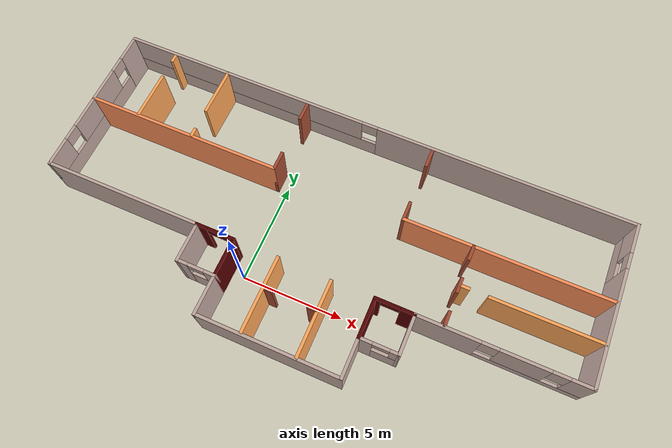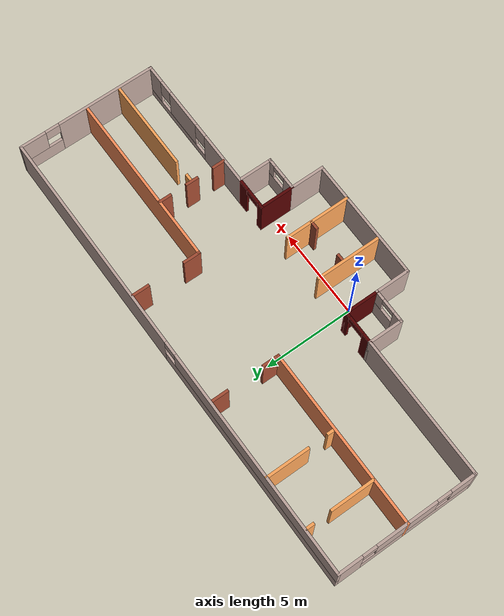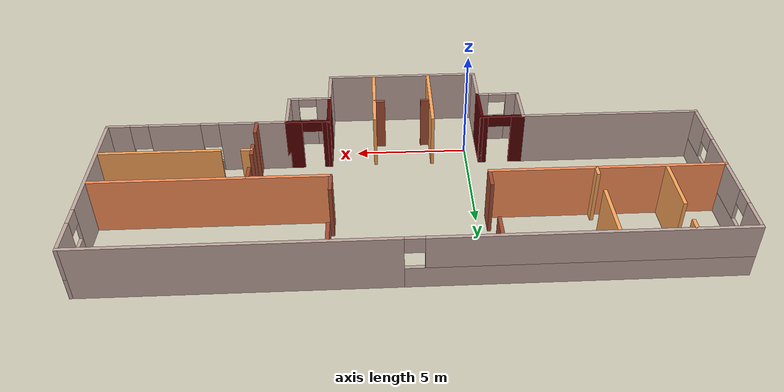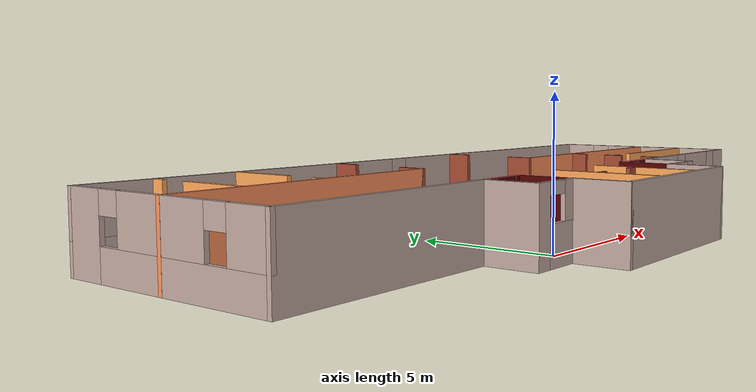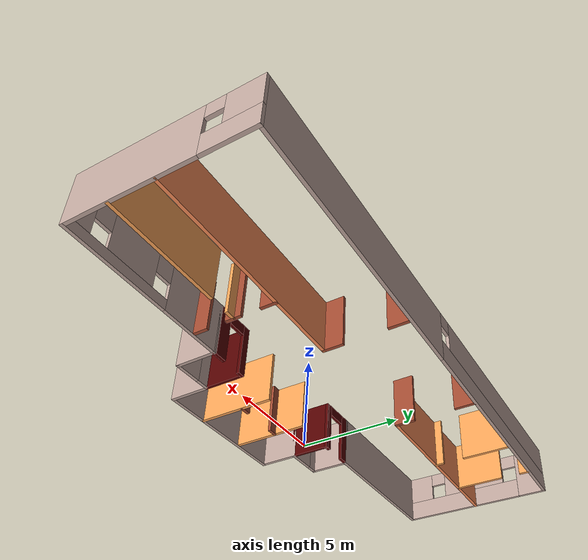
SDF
<?xml version='1.0'?>
<sdf version='1.6'>
  <model name='model'>
    <pose frame=''>2.79611 2.93325 0 0 -0 0</pose>
    <link name='Wall_10'>
      <pose frame=''>4.35076 -3.925 0 0 -0 0</pose>
      <visual name='Wall_10_Visual_0'>
        <pose frame=''>-0.647646 0 1.25 0 -0 0</pose>
        <geometry>
          <box>
            <size>0.704708 0.15 2.5</size>
          </box>
        </geometry>
        <material>
          <script>
            <uri>file://media/materials/scripts/gazebo.material</uri>
            <name>Gazebo/Grey</name>
          </script>
          <ambient>0.760784 0.662745 0.627451 1</ambient>
        </material>
        <meta>
          <layer>0</layer>
        </meta>
      </visual>
      <collision name='Wall_10_Collision_0'>
        <geometry>
          <box>
            <size>0.704708 0.15 2.5</size>
          </box>
        </geometry>
        <pose frame=''>-0.647646 0 1.25 0 -0 0</pose>
      </collision>
      <visual name='Wall_10_Visual_1'>
        <pose frame=''>0.352354 0 0.65 0 -0 0</pose>
        <geometry>
          <box>
            <size>1.29529 0.15 1.3</size>
          </box>
        </geometry>
        <material>
          <script>
            <uri>file://media/materials/scripts/gazebo.material</uri>
            <name>Gazebo/Grey</name>
          </script>
          <ambient>0.760784 0.662745 0.627451 1</ambient>
        </material>
        <meta>
          <layer>0</layer>
        </meta>
      </visual>
      <collision name='Wall_10_Collision_1'>
        <geometry>
          <box>
            <size>1.29529 0.15 1.3</size>
          </box>
        </geometry>
        <pose frame=''>0.352354 0 0.65 0 -0 0</pose>
      </collision>
      <visual name='Wall_10_Visual_2'>
        <pose frame=''>0.752354 0 1.9 0 -0 0</pose>
        <geometry>
          <box>
            <size>0.495292 0.15 1.2</size>
          </box>
        </geometry>
        <material>
          <script>
            <uri>file://media/materials/scripts/gazebo.material</uri>
            <name>Gazebo/Grey</name>
          </script>
          <ambient>0.760784 0.662745 0.627451 1</ambient>
        </material>
        <meta>
          <layer>0</layer>
        </meta>
      </visual>
      <collision name='Wall_10_Collision_2'>
        <geometry>
          <box>
            <size>0.495292 0.15 1.2</size>
          </box>
        </geometry>
        <pose frame=''>0.752354 0 1.9 0 -0 0</pose>
      </collision>
      <visual name='Wall_10_Visual_3'>
        <pose frame=''>0.104708 0 2.3 0 -0 0</pose>
        <geometry>
          <box>
            <size>0.8 0.15 0.4</size>
          </box>
        </geometry>
        <material>
          <script>
            <uri>file://media/materials/scripts/gazebo.material</uri>
            <name>Gazebo/Grey</name>
          </script>
          <ambient>0.760784 0.662745 0.627451 1</ambient>
        </material>
        <meta>
          <layer>0</layer>
        </meta>
      </visual>
      <collision name='Wall_10_Collision_3'>
        <geometry>
          <box>
            <size>0.8 0.15 0.4</size>
          </box>
        </geometry>
        <pose frame=''>0.104708 0 2.3 0 -0 0</pose>
      </collision>
    </link>
    <link name='Wall_11'>
      <collision name='Wall_11_Collision'>
        <geometry>
          <box>
            <size>2 0.15 2.5</size>
          </box>
        </geometry>
        <pose frame=''>0 0 1.25 0 -0 0</pose>
      </collision>
      <visual name='Wall_11_Visual'>
        <pose frame=''>0 0 1.25 0 -0 0</pose>
        <geometry>
          <box>
            <size>2 0.15 2.5</size>
          </box>
        </geometry>
        <material>
          <script>
            <uri>file://media/materials/scripts/gazebo.material</uri>
            <name>Gazebo/Grey</name>
          </script>
          <ambient>0.760784 0.662745 0.627451 1</ambient>
        </material>
        <meta>
          <layer>0</layer>
        </meta>
      </visual>
      <pose frame=''>5.27576 -3 0 0 -0 1.5708</pose>
    </link>
    <link name='Wall_12'>
      <pose frame=''>9.20076 -2.075 0 0 -0 0</pose>
      <visual name='Wall_12_Visual_0'>
        <pose frame=''>-2.47082 0 1.25 0 -0 0</pose>
        <geometry>
          <box>
            <size>3.05836 0.15 2.5</size>
          </box>
        </geometry>
        <material>
          <script>
            <uri>file://media/materials/scripts/gazebo.material</uri>
            <name>Gazebo/Grey</name>
          </script>
          <ambient>0.760784 0.662745 0.627451 1</ambient>
        </material>
        <meta>
          <layer>0</layer>
        </meta>
      </visual>
      <collision name='Wall_12_Collision_0'>
        <geometry>
          <box>
            <size>3.05836 0.15 2.5</size>
          </box>
        </geometry>
        <pose frame=''>-2.47082 0 1.25 0 -0 0</pose>
      </collision>
      <visual name='Wall_12_Visual_1'>
        <pose frame=''>1.52918 0 0.25 0 -0 0</pose>
        <geometry>
          <box>
            <size>4.94164 0.15 0.5</size>
          </box>
        </geometry>
        <material>
          <script>
            <uri>file://media/materials/scripts/gazebo.material</uri>
            <name>Gazebo/Grey</name>
          </script>
          <ambient>0.760784 0.662745 0.627451 1</ambient>
        </material>
        <meta>
          <layer>0</layer>
        </meta>
      </visual>
      <collision name='Wall_12_Collision_1'>
        <geometry>
          <box>
            <size>4.94164 0.15 0.5</size>
          </box>
        </geometry>
        <pose frame=''>1.52918 0 0.25 0 -0 0</pose>
      </collision>
      <visual name='Wall_12_Visual_2'>
        <pose frame=''>0.995093 0 1.5 0 -0 0</pose>
        <geometry>
          <box>
            <size>2.27347 0.15 2</size>
          </box>
        </geometry>
        <material>
          <script>
            <uri>file://media/materials/scripts/gazebo.material</uri>
            <name>Gazebo/Grey</name>
          </script>
          <ambient>0.760784 0.662745 0.627451 1</ambient>
        </material>
        <meta>
          <layer>0</layer>
        </meta>
      </visual>
      <collision name='Wall_12_Collision_2'>
        <geometry>
          <box>
            <size>2.27347 0.15 2</size>
          </box>
        </geometry>
        <pose frame=''>0.995093 0 1.5 0 -0 0</pose>
      </collision>
      <visual name='Wall_12_Visual_3'>
        <pose frame=''>3.46591 0 1.5 0 -0 0</pose>
        <geometry>
          <box>
            <size>1.06817 0.15 2</size>
          </box>
        </geometry>
        <material>
          <script>
            <uri>file://media/materials/scripts/gazebo.material</uri>
            <name>Gazebo/Grey</name>
          </script>
          <ambient>0.760784 0.662745 0.627451 1</ambient>
        </material>
        <meta>
          <layer>0</layer>
        </meta>
      </visual>
      <collision name='Wall_12_Collision_3'>
        <geometry>
          <box>
            <size>1.06817 0.15 2</size>
          </box>
        </geometry>
        <pose frame=''>3.46591 0 1.5 0 -0 0</pose>
      </collision>
      <visual name='Wall_12_Visual_4'>
        <pose frame=''>-0.54164 0 1.9 0 -0 0</pose>
        <geometry>
          <box>
            <size>0.8 0.15 1.2</size>
          </box>
        </geometry>
        <material>
          <script>
            <uri>file://media/materials/scripts/gazebo.material</uri>
            <name>Gazebo/Grey</name>
          </script>
          <ambient>0.760784 0.662745 0.627451 1</ambient>
        </material>
        <meta>
          <layer>0</layer>
        </meta>
      </visual>
      <collision name='Wall_12_Collision_4'>
        <geometry>
          <box>
            <size>0.8 0.15 1.2</size>
          </box>
        </geometry>
        <pose frame=''>-0.54164 0 1.9 0 -0 0</pose>
      </collision>
      <visual name='Wall_12_Visual_5'>
        <pose frame=''>2.53183 0 1.9 0 -0 0</pose>
        <geometry>
          <box>
            <size>0.8 0.15 1.2</size>
          </box>
        </geometry>
        <material>
          <script>
            <uri>file://media/materials/scripts/gazebo.material</uri>
            <name>Gazebo/Grey</name>
          </script>
          <ambient>0.760784 0.662745 0.627451 1</ambient>
        </material>
        <meta>
          <layer>0</layer>
        </meta>
      </visual>
      <collision name='Wall_12_Collision_5'>
        <geometry>
          <box>
            <size>0.8 0.15 1.2</size>
          </box>
        </geometry>
        <pose frame=''>2.53183 0 1.9 0 -0 0</pose>
      </collision>
    </link>
    <link name='Wall_13'>
      <pose frame=''>13.1258 1.85 0 0 -0 1.5708</pose>
      <visual name='Wall_13_Visual_0'>
        <pose frame=''>-1.15834 0 1.25 0 -0 0</pose>
        <geometry>
          <box>
            <size>5.68331 0.15 2.5</size>
          </box>
        </geometry>
        <material>
          <script>
            <uri>file://media/materials/scripts/gazebo.material</uri>
            <name>Gazebo/Grey</name>
          </script>
          <ambient>0.760784 0.662745 0.627451 1</ambient>
        </material>
        <meta>
          <layer>0</layer>
        </meta>
      </visual>
      <collision name='Wall_13_Collision_0'>
        <geometry>
          <box>
            <size>5.68331 0.15 2.5</size>
          </box>
        </geometry>
        <pose frame=''>-1.15834 0 1.25 0 -0 0</pose>
      </collision>
      <visual name='Wall_13_Visual_1'>
        <pose frame=''>2.84165 0 0.5 0 -0 0</pose>
        <geometry>
          <box>
            <size>2.31669 0.15 1</size>
          </box>
        </geometry>
        <material>
          <script>
            <uri>file://media/materials/scripts/gazebo.material</uri>
            <name>Gazebo/Grey</name>
          </script>
          <ambient>0.760784 0.662745 0.627451 1</ambient>
        </material>
        <meta>
          <layer>0</layer>
        </meta>
      </visual>
      <collision name='Wall_13_Collision_1'>
        <geometry>
          <box>
            <size>2.31669 0.15 1</size>
          </box>
        </geometry>
        <pose frame=''>2.84165 0 0.5 0 -0 0</pose>
      </collision>
      <visual name='Wall_13_Visual_2'>
        <pose frame=''>3.24166 0 1.75 0 -0 0</pose>
        <geometry>
          <box>
            <size>1.51669 0.15 1.5</size>
          </box>
        </geometry>
        <material>
          <script>
            <uri>file://media/materials/scripts/gazebo.material</uri>
            <name>Gazebo/Grey</name>
          </script>
          <ambient>0.760784 0.662745 0.627451 1</ambient>
        </material>
        <meta>
          <layer>0</layer>
        </meta>
      </visual>
      <collision name='Wall_13_Collision_2'>
        <geometry>
          <box>
            <size>1.51669 0.15 1.5</size>
          </box>
        </geometry>
        <pose frame=''>3.24166 0 1.75 0 -0 0</pose>
      </collision>
      <visual name='Wall_13_Visual_3'>
        <pose frame=''>2.08331 0 2.15 0 -0 0</pose>
        <geometry>
          <box>
            <size>0.8 0.15 0.7</size>
          </box>
        </geometry>
        <material>
          <script>
            <uri>file://media/materials/scripts/gazebo.material</uri>
            <name>Gazebo/Grey</name>
          </script>
          <ambient>0.760784 0.662745 0.627451 1</ambient>
        </material>
        <meta>
          <layer>0</layer>
        </meta>
      </visual>
      <collision name='Wall_13_Collision_3'>
        <geometry>
          <box>
            <size>0.8 0.15 0.7</size>
          </box>
        </geometry>
        <pose frame=''>2.08331 0 2.15 0 -0 0</pose>
      </collision>
    </link>
    <link name='Wall_14'>
      <pose frame=''>0.000761 5.775 0 0 -0 3.14159</pose>
      <visual name='Wall_14_Visual_0'>
        <pose frame=''>-6.79874 0 1.25 0 -0 0</pose>
        <geometry>
          <box>
            <size>12.8025 0.15 2.5</size>
          </box>
        </geometry>
        <material>
          <script>
            <uri>file://media/materials/scripts/gazebo.material</uri>
            <name>Gazebo/Grey</name>
          </script>
          <ambient>0.760784 0.662745 0.627451 1</ambient>
        </material>
        <meta>
          <layer>0</layer>
        </meta>
      </visual>
      <collision name='Wall_14_Collision_0'>
        <geometry>
          <box>
            <size>12.8025 0.15 2.5</size>
          </box>
        </geometry>
        <pose frame=''>-6.79874 0 1.25 0 -0 0</pose>
      </collision>
      <visual name='Wall_14_Visual_1'>
        <pose frame=''>6.40126 0 0.5 0 -0 0</pose>
        <geometry>
          <box>
            <size>13.5975 0.15 1</size>
          </box>
        </geometry>
        <material>
          <script>
            <uri>file://media/materials/scripts/gazebo.material</uri>
            <name>Gazebo/Grey</name>
          </script>
          <ambient>0.760784 0.662745 0.627451 1</ambient>
        </material>
        <meta>
          <layer>0</layer>
        </meta>
      </visual>
      <collision name='Wall_14_Collision_1'>
        <geometry>
          <box>
            <size>13.5975 0.15 1</size>
          </box>
        </geometry>
        <pose frame=''>6.40126 0 0.5 0 -0 0</pose>
      </collision>
      <visual name='Wall_14_Visual_2'>
        <pose frame=''>6.80126 0 1.75 0 -0 0</pose>
        <geometry>
          <box>
            <size>12.7975 0.15 1.5</size>
          </box>
        </geometry>
        <material>
          <script>
            <uri>file://media/materials/scripts/gazebo.material</uri>
            <name>Gazebo/Grey</name>
          </script>
          <ambient>0.760784 0.662745 0.627451 1</ambient>
        </material>
        <meta>
          <layer>0</layer>
        </meta>
      </visual>
      <collision name='Wall_14_Collision_2'>
        <geometry>
          <box>
            <size>12.7975 0.15 1.5</size>
          </box>
        </geometry>
        <pose frame=''>6.80126 0 1.75 0 -0 0</pose>
      </collision>
      <visual name='Wall_14_Visual_3'>
        <pose frame=''>0.002526 0 2.15 0 -0 0</pose>
        <geometry>
          <box>
            <size>0.8 0.15 0.7</size>
          </box>
        </geometry>
        <material>
          <script>
            <uri>file://media/materials/scripts/gazebo.material</uri>
            <name>Gazebo/Grey</name>
          </script>
          <ambient>0.760784 0.662745 0.627451 1</ambient>
        </material>
        <meta>
          <layer>0</layer>
        </meta>
      </visual>
      <collision name='Wall_14_Collision_3'>
        <geometry>
          <box>
            <size>0.8 0.15 0.7</size>
          </box>
        </geometry>
        <pose frame=''>0.002526 0 2.15 0 -0 0</pose>
      </collision>
    </link>
    <link name='Wall_17'>
      <collision name='Wall_17_Collision'>
        <geometry>
          <box>
            <size>2 0.15 2.5</size>
          </box>
        </geometry>
        <pose frame=''>0 0 1.25 0 -0 0</pose>
      </collision>
      <visual name='Wall_17_Visual'>
        <pose frame=''>0 0 1.25 0 -0 0</pose>
        <geometry>
          <box>
            <size>2 0.15 2.5</size>
          </box>
        </geometry>
        <material>
          <script>
            <uri>file://media/materials/scripts/gazebo.material</uri>
            <name>Gazebo/Grey</name>
          </script>
          <ambient>0.333333 0 0 1</ambient>
        </material>
        <meta>
          <layer>0</layer>
        </meta>
      </visual>
      <pose frame=''>-3.42424 -3 0 0 -0 1.5708</pose>
    </link>
    <link name='Wall_19'>
      <collision name='Wall_19_Collision'>
        <geometry>
          <box>
            <size>2 0.15 2.5</size>
          </box>
        </geometry>
        <pose frame=''>0 0 1.25 0 -0 0</pose>
      </collision>
      <visual name='Wall_19_Visual'>
        <pose frame=''>0 0 1.25 0 -0 0</pose>
        <geometry>
          <box>
            <size>2 0.15 2.5</size>
          </box>
        </geometry>
        <material>
          <script>
            <uri>file://media/materials/scripts/gazebo.material</uri>
            <name>Gazebo/Grey</name>
          </script>
          <ambient>0.333333 0 0 1</ambient>
        </material>
        <meta>
          <layer>0</layer>
        </meta>
      </visual>
      <pose frame=''>3.42576 -3 0 0 -0 1.5708</pose>
    </link>
    <link name='Wall_23'>
      <pose frame=''>-4.34924 -2.075 0 0 -0 0</pose>
      <visual name='Wall_23_Visual_0'>
        <pose frame=''>-0.695709 0 1.25 0 -0 0</pose>
        <geometry>
          <box>
            <size>0.608582 0.15 2.5</size>
          </box>
        </geometry>
        <material>
          <script>
            <uri>file://media/materials/scripts/gazebo.material</uri>
            <name>Gazebo/Grey</name>
          </script>
          <ambient>0.333333 0 0 1</ambient>
        </material>
        <meta>
          <layer>0</layer>
        </meta>
      </visual>
      <collision name='Wall_23_Collision_0'>
        <geometry>
          <box>
            <size>0.608582 0.15 2.5</size>
          </box>
        </geometry>
        <pose frame=''>-0.695709 0 1.25 0 -0 0</pose>
      </collision>
      <visual name='Wall_23_Visual_1'>
        <pose frame=''>0.821594 0 1.25 0 -0 0</pose>
        <geometry>
          <box>
            <size>0.356813 0.15 2.5</size>
          </box>
        </geometry>
        <material>
          <script>
            <uri>file://media/materials/scripts/gazebo.material</uri>
            <name>Gazebo/Grey</name>
          </script>
          <ambient>0.333333 0 0 1</ambient>
        </material>
        <meta>
          <layer>0</layer>
        </meta>
      </visual>
      <collision name='Wall_23_Collision_1'>
        <geometry>
          <box>
            <size>0.356813 0.15 2.5</size>
          </box>
        </geometry>
        <pose frame=''>0.821594 0 1.25 0 -0 0</pose>
      </collision>
      <visual name='Wall_23_Visual_2'>
        <pose frame=''>0.125884 0 2.25 0 -0 0</pose>
        <geometry>
          <box>
            <size>1.03461 0.15 0.5</size>
          </box>
        </geometry>
        <material>
          <script>
            <uri>file://media/materials/scripts/gazebo.material</uri>
            <name>Gazebo/Grey</name>
          </script>
          <ambient>0.333333 0 0 1</ambient>
        </material>
        <meta>
          <layer>0</layer>
        </meta>
      </visual>
      <collision name='Wall_23_Collision_2'>
        <geometry>
          <box>
            <size>1.03461 0.15 0.5</size>
          </box>
        </geometry>
        <pose frame=''>0.125884 0 2.25 0 -0 0</pose>
      </collision>
    </link>
    <link name='Wall_25'>
      <pose frame=''>4.35076 -2.075 0 0 -0 0</pose>
      <visual name='Wall_25_Visual_0'>
        <pose frame=''>-0.82203 0 1.25 0 -0 0</pose>
        <geometry>
          <box>
            <size>0.35594 0.15 2.5</size>
          </box>
        </geometry>
        <material>
          <script>
            <uri>file://media/materials/scripts/gazebo.material</uri>
            <name>Gazebo/Grey</name>
          </script>
          <ambient>0.337255 0 0 1</ambient>
        </material>
        <meta>
          <layer>0</layer>
        </meta>
      </visual>
      <collision name='Wall_25_Collision_0'>
        <geometry>
          <box>
            <size>0.35594 0.15 2.5</size>
          </box>
        </geometry>
        <pose frame=''>-0.82203 0 1.25 0 -0 0</pose>
      </collision>
      <visual name='Wall_25_Visual_1'>
        <pose frame=''>0.62797 0 1.25 0 -0 0</pose>
        <geometry>
          <box>
            <size>0.74406 0.15 2.5</size>
          </box>
        </geometry>
        <material>
          <script>
            <uri>file://media/materials/scripts/gazebo.material</uri>
            <name>Gazebo/Grey</name>
          </script>
          <ambient>0.337255 0 0 1</ambient>
        </material>
        <meta>
          <layer>0</layer>
        </meta>
      </visual>
      <collision name='Wall_25_Collision_1'>
        <geometry>
          <box>
            <size>0.74406 0.15 2.5</size>
          </box>
        </geometry>
        <pose frame=''>0.62797 0 1.25 0 -0 0</pose>
      </collision>
      <visual name='Wall_25_Visual_2'>
        <pose frame=''>-0.19406 0 2.25 0 -0 0</pose>
        <geometry>
          <box>
            <size>0.9 0.15 0.5</size>
          </box>
        </geometry>
        <material>
          <script>
            <uri>file://media/materials/scripts/gazebo.material</uri>
            <name>Gazebo/Grey</name>
          </script>
          <ambient>0.337255 0 0 1</ambient>
        </material>
        <meta>
          <layer>0</layer>
        </meta>
      </visual>
      <collision name='Wall_25_Collision_2'>
        <geometry>
          <box>
            <size>0.9 0.15 0.5</size>
          </box>
        </geometry>
        <pose frame=''>-0.19406 0 2.25 0 -0 0</pose>
      </collision>
    </link>
    <link name='Wall_27'>
      <collision name='Wall_27_Collision'>
        <geometry>
          <box>
            <size>10 0.15 2.5</size>
          </box>
        </geometry>
        <pose frame=''>0 0 1.25 0 -0 0</pose>
      </collision>
      <visual name='Wall_27_Visual'>
        <pose frame=''>0 0 1.25 0 -0 0</pose>
        <geometry>
          <box>
            <size>10 0.15 2.5</size>
          </box>
        </geometry>
        <material>
          <script>
            <uri>file://media/materials/scripts/gazebo.material</uri>
            <name>Gazebo/Grey</name>
          </script>
          <ambient>1 0.568627 0.352941 1</ambient>
        </material>
        <meta>
          <layer>0</layer>
        </meta>
      </visual>
      <pose frame=''>-8.20076 1.8559 0 0 -0 0</pose>
    </link>
    <link name='Wall_29'>
      <collision name='Wall_29_Collision'>
        <geometry>
          <box>
            <size>1 0.15 2.5</size>
          </box>
        </geometry>
        <pose frame=''>0 0 1.25 0 -0 0</pose>
      </collision>
      <visual name='Wall_29_Visual'>
        <pose frame=''>0 0 1.25 0 -0 0</pose>
        <geometry>
          <box>
            <size>1 0.15 2.5</size>
          </box>
        </geometry>
        <material>
          <script>
            <uri>file://media/materials/scripts/gazebo.material</uri>
            <name>Gazebo/Bricks</name>
          </script>
          <ambient>1 1 1 1</ambient>
        </material>
        <meta>
          <layer>0</layer>
        </meta>
      </visual>
      <pose frame=''>-3.27576 2.2809 0 0 -0 1.5708</pose>
    </link>
    <link name='Wall_3'>
      <pose frame=''>-13.1242 1.85 0 0 0 -1.5708</pose>
      <visual name='Wall_3_Visual_0'>
        <pose frame=''>-3.27577 0 1.25 0 -0 0</pose>
        <geometry>
          <box>
            <size>1.44847 0.15 2.5</size>
          </box>
        </geometry>
        <material>
          <script>
            <uri>file://media/materials/scripts/gazebo.material</uri>
            <name>Gazebo/Grey</name>
          </script>
          <ambient>0.760784 0.662745 0.627451 1</ambient>
        </material>
        <meta>
          <layer>0</layer>
        </meta>
      </visual>
      <collision name='Wall_3_Collision_0'>
        <geometry>
          <box>
            <size>1.44847 0.15 2.5</size>
          </box>
        </geometry>
        <pose frame=''>-3.27577 0 1.25 0 -0 0</pose>
      </collision>
      <visual name='Wall_3_Visual_1'>
        <pose frame=''>0.724233 0 0.5 0 -0 0</pose>
        <geometry>
          <box>
            <size>6.55153 0.15 1</size>
          </box>
        </geometry>
        <material>
          <script>
            <uri>file://media/materials/scripts/gazebo.material</uri>
            <name>Gazebo/Grey</name>
          </script>
          <ambient>0.760784 0.662745 0.627451 1</ambient>
        </material>
        <meta>
          <layer>0</layer>
        </meta>
      </visual>
      <collision name='Wall_3_Collision_1'>
        <geometry>
          <box>
            <size>6.55153 0.15 1</size>
          </box>
        </geometry>
        <pose frame=''>0.724233 0 0.5 0 -0 0</pose>
      </collision>
      <visual name='Wall_3_Visual_2'>
        <pose frame=''>-0.01388 0 1.75 0 -0 0</pose>
        <geometry>
          <box>
            <size>3.47531 0.15 1.5</size>
          </box>
        </geometry>
        <material>
          <script>
            <uri>file://media/materials/scripts/gazebo.material</uri>
            <name>Gazebo/Grey</name>
          </script>
          <ambient>0.760784 0.662745 0.627451 1</ambient>
        </material>
        <meta>
          <layer>0</layer>
        </meta>
      </visual>
      <collision name='Wall_3_Collision_2'>
        <geometry>
          <box>
            <size>3.47531 0.15 1.5</size>
          </box>
        </geometry>
        <pose frame=''>-0.01388 0 1.75 0 -0 0</pose>
      </collision>
      <visual name='Wall_3_Visual_3'>
        <pose frame=''>3.26189 0 1.75 0 -0 0</pose>
        <geometry>
          <box>
            <size>1.47623 0.15 1.5</size>
          </box>
        </geometry>
        <material>
          <script>
            <uri>file://media/materials/scripts/gazebo.material</uri>
            <name>Gazebo/Grey</name>
          </script>
          <ambient>0.760784 0.662745 0.627451 1</ambient>
        </material>
        <meta>
          <layer>0</layer>
        </meta>
      </visual>
      <collision name='Wall_3_Collision_3'>
        <geometry>
          <box>
            <size>1.47623 0.15 1.5</size>
          </box>
        </geometry>
        <pose frame=''>3.26189 0 1.75 0 -0 0</pose>
      </collision>
      <visual name='Wall_3_Visual_4'>
        <pose frame=''>-2.15153 0 2.15 0 -0 0</pose>
        <geometry>
          <box>
            <size>0.8 0.15 0.7</size>
          </box>
        </geometry>
        <material>
          <script>
            <uri>file://media/materials/scripts/gazebo.material</uri>
            <name>Gazebo/Grey</name>
          </script>
          <ambient>0.760784 0.662745 0.627451 1</ambient>
        </material>
        <meta>
          <layer>0</layer>
        </meta>
      </visual>
      <collision name='Wall_3_Collision_4'>
        <geometry>
          <box>
            <size>0.8 0.15 0.7</size>
          </box>
        </geometry>
        <pose frame=''>-2.15153 0 2.15 0 -0 0</pose>
      </collision>
      <visual name='Wall_3_Visual_5'>
        <pose frame=''>2.12377 0 2.15 0 -0 0</pose>
        <geometry>
          <box>
            <size>0.8 0.15 0.7</size>
          </box>
        </geometry>
        <material>
          <script>
            <uri>file://media/materials/scripts/gazebo.material</uri>
            <name>Gazebo/Grey</name>
          </script>
          <ambient>0.760784 0.662745 0.627451 1</ambient>
        </material>
        <meta>
          <layer>0</layer>
        </meta>
      </visual>
      <collision name='Wall_3_Collision_5'>
        <geometry>
          <box>
            <size>0.8 0.15 0.7</size>
          </box>
        </geometry>
        <pose frame=''>2.12377 0 2.15 0 -0 0</pose>
      </collision>
    </link>
    <link name='Wall_31'>
      <collision name='Wall_31_Collision'>
        <geometry>
          <box>
            <size>1 0.15 2.5</size>
          </box>
        </geometry>
        <pose frame=''>0 0 1.25 0 -0 0</pose>
      </collision>
      <visual name='Wall_31_Visual'>
        <pose frame=''>0 0 1.25 0 -0 0</pose>
        <geometry>
          <box>
            <size>1 0.15 2.5</size>
          </box>
        </geometry>
        <material>
          <script>
            <uri>file://media/materials/scripts/gazebo.material</uri>
            <name>Gazebo/Bricks</name>
          </script>
          <ambient>1 1 1 1</ambient>
        </material>
        <meta>
          <layer>0</layer>
        </meta>
      </visual>
      <pose frame=''>-3.28723 5.2599 0 0 0 -1.5708</pose>
    </link>
    <link name='Wall_33'>
      <collision name='Wall_33_Collision'>
        <geometry>
          <box>
            <size>10 0.15 2.5</size>
          </box>
        </geometry>
        <pose frame=''>0 0 1.25 0 -0 0</pose>
      </collision>
      <visual name='Wall_33_Visual'>
        <pose frame=''>0 0 1.25 0 -0 0</pose>
        <geometry>
          <box>
            <size>10 0.15 2.5</size>
          </box>
        </geometry>
        <material>
          <script>
            <uri>file://media/materials/scripts/gazebo.material</uri>
            <name>Gazebo/Grey</name>
          </script>
          <ambient>1 0.568627 0.352941 1</ambient>
        </material>
        <meta>
          <layer>0</layer>
        </meta>
      </visual>
      <pose frame=''>8.16802 1.85434 0 0 -0 3.14159</pose>
    </link>
    <link name='Wall_34'>
      <collision name='Wall_34_Collision'>
        <geometry>
          <box>
            <size>1 0.15 2.5</size>
          </box>
        </geometry>
        <pose frame=''>0 0 1.25 0 -0 0</pose>
      </collision>
      <visual name='Wall_34_Visual'>
        <pose frame=''>0 0 1.25 0 -0 0</pose>
        <geometry>
          <box>
            <size>1 0.15 2.5</size>
          </box>
        </geometry>
        <material>
          <script>
            <uri>file://media/materials/scripts/gazebo.material</uri>
            <name>Gazebo/Bricks</name>
          </script>
          <ambient>1 1 1 1</ambient>
        </material>
        <meta>
          <layer>0</layer>
        </meta>
      </visual>
      <pose frame=''>3.23171 2.27934 0 0 -0 1.5708</pose>
    </link>
    <link name='Wall_36'>
      <collision name='Wall_36_Collision'>
        <geometry>
          <box>
            <size>1 0.15 2.5</size>
          </box>
        </geometry>
        <pose frame=''>0 0 1.25 0 -0 0</pose>
      </collision>
      <visual name='Wall_36_Visual'>
        <pose frame=''>0 0 1.25 0 -0 0</pose>
        <geometry>
          <box>
            <size>1 0.15 2.5</size>
          </box>
        </geometry>
        <material>
          <script>
            <uri>file://media/materials/scripts/gazebo.material</uri>
            <name>Gazebo/Bricks</name>
          </script>
          <ambient>1 1 1 1</ambient>
        </material>
        <meta>
          <layer>0</layer>
        </meta>
      </visual>
      <pose frame=''>3.24957 5.26265 0 0 0 -1.5708</pose>
    </link>
    <link name='Wall_4'>
      <collision name='Wall_4_Collision'>
        <geometry>
          <box>
            <size>8 0.15 2.5</size>
          </box>
        </geometry>
        <pose frame=''>0 0 1.25 0 -0 0</pose>
      </collision>
      <visual name='Wall_4_Visual'>
        <pose frame=''>0 0 1.25 0 -0 0</pose>
        <geometry>
          <box>
            <size>8 0.15 2.5</size>
          </box>
        </geometry>
        <material>
          <script>
            <uri>file://media/materials/scripts/gazebo.material</uri>
            <name>Gazebo/Grey</name>
          </script>
          <ambient>0.760784 0.662745 0.627451 1</ambient>
        </material>
        <meta>
          <layer>0</layer>
        </meta>
      </visual>
      <pose frame=''>-9.19924 -2.075 0 0 -0 0</pose>
    </link>
    <link name='Wall_40'>
      <collision name='Wall_40_Collision'>
        <geometry>
          <box>
            <size>3.75 0.15 2.5</size>
          </box>
        </geometry>
        <pose frame=''>0 0 1.25 0 -0 0</pose>
      </collision>
      <visual name='Wall_40_Visual'>
        <pose frame=''>0 0 1.25 0 -0 0</pose>
        <geometry>
          <box>
            <size>3.75 0.15 2.5</size>
          </box>
        </geometry>
        <material>
          <script>
            <uri>file://media/materials/scripts/gazebo.material</uri>
            <name>Gazebo/Grey</name>
          </script>
          <ambient>1 0.654902 0.352941 1</ambient>
        </material>
        <meta>
          <layer>0</layer>
        </meta>
      </visual>
      <pose frame=''>-1.2227 -3.87802 0 0 -0 1.5708</pose>
    </link>
    <link name='Wall_42'>
      <collision name='Wall_42_Collision'>
        <geometry>
          <box>
            <size>3.75 0.15 2.5</size>
          </box>
        </geometry>
        <pose frame=''>0 0 1.25 0 -0 0</pose>
      </collision>
      <visual name='Wall_42_Visual'>
        <pose frame=''>0 0 1.25 0 -0 0</pose>
        <geometry>
          <box>
            <size>3.75 0.15 2.5</size>
          </box>
        </geometry>
        <material>
          <script>
            <uri>file://media/materials/scripts/gazebo.material</uri>
            <name>Gazebo/Grey</name>
          </script>
          <ambient>1 0.654902 0.352941 1</ambient>
        </material>
        <meta>
          <layer>0</layer>
        </meta>
      </visual>
      <pose frame=''>1.36977 -3.93472 0 0 -0 1.5708</pose>
    </link>
    <link name='Wall_44'>
      <collision name='Wall_44_Collision'>
        <geometry>
          <box>
            <size>0.5 0.15 2.5</size>
          </box>
        </geometry>
        <pose frame=''>0 0 1.25 0 -0 0</pose>
      </collision>
      <visual name='Wall_44_Visual'>
        <pose frame=''>0 0 1.25 0 -0 0</pose>
        <geometry>
          <box>
            <size>0.5 0.15 2.5</size>
          </box>
        </geometry>
        <material>
          <script>
            <uri>file://media/materials/scripts/gazebo.material</uri>
            <name>Gazebo/Bricks</name>
          </script>
          <ambient>1 1 1 1</ambient>
        </material>
        <meta>
          <layer>0</layer>
        </meta>
      </visual>
      <pose frame=''>-1.00222 -3.57433 0 0 -0 0</pose>
    </link>
    <link name='Wall_46'>
      <collision name='Wall_46_Collision'>
        <geometry>
          <box>
            <size>0.5 0.15 2.5</size>
          </box>
        </geometry>
        <pose frame=''>0 0 1.25 0 -0 0</pose>
      </collision>
      <visual name='Wall_46_Visual'>
        <pose frame=''>0 0 1.25 0 -0 0</pose>
        <geometry>
          <box>
            <size>0.5 0.15 2.5</size>
          </box>
        </geometry>
        <material>
          <script>
            <uri>file://media/materials/scripts/gazebo.material</uri>
            <name>Gazebo/Bricks</name>
          </script>
          <ambient>1 1 1 1</ambient>
        </material>
        <meta>
          <layer>0</layer>
        </meta>
      </visual>
      <pose frame=''>1.13792 -3.57433 0 0 -0 3.14159</pose>
    </link>
    <link name='Wall_48'>
      <collision name='Wall_48_Collision'>
        <geometry>
          <box>
            <size>0.5 0.15 2.5</size>
          </box>
        </geometry>
        <pose frame=''>0 0 1.25 0 -0 0</pose>
      </collision>
      <visual name='Wall_48_Visual'>
        <pose frame=''>0 0 1.25 0 -0 0</pose>
        <geometry>
          <box>
            <size>0.5 0.15 2.5</size>
          </box>
        </geometry>
        <material>
          <script>
            <uri>file://media/materials/scripts/gazebo.material</uri>
            <name>Gazebo/Grey</name>
          </script>
          <ambient>1 0.654902 0.352941 1</ambient>
        </material>
        <meta>
          <layer>0</layer>
        </meta>
      </visual>
      <pose frame=''>-10.6509 5.51316 0 0 0 -1.5708</pose>
    </link>
    <link name='Wall_5'>
      <collision name='Wall_5_Collision'>
        <geometry>
          <box>
            <size>2 0.15 2.5</size>
          </box>
        </geometry>
        <pose frame=''>0 0 1.25 0 -0 0</pose>
      </collision>
      <visual name='Wall_5_Visual'>
        <pose frame=''>0 0 1.25 0 -0 0</pose>
        <geometry>
          <box>
            <size>2 0.15 2.5</size>
          </box>
        </geometry>
        <material>
          <script>
            <uri>file://media/materials/scripts/gazebo.material</uri>
            <name>Gazebo/Grey</name>
          </script>
          <ambient>0.760784 0.662745 0.627451 1</ambient>
        </material>
        <meta>
          <layer>0</layer>
        </meta>
      </visual>
      <pose frame=''>-5.27424 -3 0 0 0 -1.5708</pose>
    </link>
    <link name='Wall_50'>
      <collision name='Wall_50_Collision'>
        <geometry>
          <box>
            <size>2.5 0.15 2.5</size>
          </box>
        </geometry>
        <pose frame=''>0 0 1.25 0 -0 0</pose>
      </collision>
      <visual name='Wall_50_Visual'>
        <pose frame=''>0 0 1.25 0 -0 0</pose>
        <geometry>
          <box>
            <size>2.5 0.15 2.5</size>
          </box>
        </geometry>
        <material>
          <script>
            <uri>file://media/materials/scripts/gazebo.material</uri>
            <name>Gazebo/Grey</name>
          </script>
          <ambient>1 0.654902 0.352941 1</ambient>
        </material>
        <meta>
          <layer>0</layer>
        </meta>
      </visual>
      <pose frame=''>-10.6378 3.0748 0 0 0 -1.5708</pose>
    </link>
    <link name='Wall_52'>
      <collision name='Wall_52_Collision'>
        <geometry>
          <box>
            <size>0.5 0.15 2.5</size>
          </box>
        </geometry>
        <pose frame=''>0 0 1.25 0 -0 0</pose>
      </collision>
      <visual name='Wall_52_Visual'>
        <pose frame=''>0 0 1.25 0 -0 0</pose>
        <geometry>
          <box>
            <size>0.5 0.15 2.5</size>
          </box>
        </geometry>
        <material>
          <script>
            <uri>file://media/materials/scripts/gazebo.material</uri>
            <name>Gazebo/Grey</name>
          </script>
          <ambient>1 0.654902 0.352941 1</ambient>
        </material>
        <meta>
          <layer>0</layer>
        </meta>
      </visual>
      <pose frame=''>-7.69566 2.05803 0 0 -0 1.5708</pose>
    </link>
    <link name='Wall_54'>
      <collision name='Wall_54_Collision'>
        <geometry>
          <box>
            <size>2.5 0.15 2.5</size>
          </box>
        </geometry>
        <pose frame=''>0 0 1.25 0 -0 0</pose>
      </collision>
      <visual name='Wall_54_Visual'>
        <pose frame=''>0 0 1.25 0 -0 0</pose>
        <geometry>
          <box>
            <size>2.5 0.15 2.5</size>
          </box>
        </geometry>
        <material>
          <script>
            <uri>file://media/materials/scripts/gazebo.material</uri>
            <name>Gazebo/Grey</name>
          </script>
          <ambient>1 0.654902 0.352941 1</ambient>
        </material>
        <meta>
          <layer>0</layer>
        </meta>
      </visual>
      <pose frame=''>-7.70873 4.58793 0 0 -0 1.5708</pose>
    </link>
    <link name='Wall_56'>
      <collision name='Wall_56_Collision'>
        <geometry>
          <box>
            <size>0.75 0.15 2.5</size>
          </box>
        </geometry>
        <pose frame=''>0 0 1.25 0 -0 0</pose>
      </collision>
      <visual name='Wall_56_Visual'>
        <pose frame=''>0 0 1.25 0 -0 0</pose>
        <geometry>
          <box>
            <size>0.75 0.15 2.5</size>
          </box>
        </geometry>
        <material>
          <script>
            <uri>file://media/materials/scripts/gazebo.material</uri>
            <name>Gazebo/Bricks</name>
          </script>
          <ambient>1 1 1 1</ambient>
        </material>
        <meta>
          <layer>0</layer>
        </meta>
      </visual>
      <pose frame=''>6.59323 1.52679 0 0 0 -1.5708</pose>
    </link>
    <link name='Wall_58'>
      <collision name='Wall_58_Collision'>
        <geometry>
          <box>
            <size>0.75 0.15 2.5</size>
          </box>
        </geometry>
        <pose frame=''>0 0 1.25 0 -0 0</pose>
      </collision>
      <visual name='Wall_58_Visual'>
        <pose frame=''>0 0 1.25 0 -0 0</pose>
        <geometry>
          <box>
            <size>0.75 0.15 2.5</size>
          </box>
        </geometry>
        <material>
          <script>
            <uri>file://media/materials/scripts/gazebo.material</uri>
            <name>Gazebo/Bricks</name>
          </script>
          <ambient>1 1 1 1</ambient>
        </material>
        <meta>
          <layer>0</layer>
        </meta>
      </visual>
      <pose frame=''>6.59695 -1.70286 0 0 -0 1.5708</pose>
    </link>
    <link name='Wall_6'>
      <pose frame=''>-4.34924 -3.925 0 0 -0 0</pose>
      <visual name='Wall_6_Visual_0'>
        <pose frame=''>-0.698028 0 1.25 0 -0 0</pose>
        <geometry>
          <box>
            <size>0.603944 0.15 2.5</size>
          </box>
        </geometry>
        <material>
          <script>
            <uri>file://media/materials/scripts/gazebo.material</uri>
            <name>Gazebo/Grey</name>
          </script>
          <ambient>0.760784 0.662745 0.627451 1</ambient>
        </material>
        <meta>
          <layer>0</layer>
        </meta>
      </visual>
      <collision name='Wall_6_Collision_0'>
        <geometry>
          <box>
            <size>0.603944 0.15 2.5</size>
          </box>
        </geometry>
        <pose frame=''>-0.698028 0 1.25 0 -0 0</pose>
      </collision>
      <visual name='Wall_6_Visual_1'>
        <pose frame=''>0.301972 0 0.65 0 -0 0</pose>
        <geometry>
          <box>
            <size>1.39606 0.15 1.3</size>
          </box>
        </geometry>
        <material>
          <script>
            <uri>file://media/materials/scripts/gazebo.material</uri>
            <name>Gazebo/Grey</name>
          </script>
          <ambient>0.760784 0.662745 0.627451 1</ambient>
        </material>
        <meta>
          <layer>0</layer>
        </meta>
      </visual>
      <collision name='Wall_6_Collision_1'>
        <geometry>
          <box>
            <size>1.39606 0.15 1.3</size>
          </box>
        </geometry>
        <pose frame=''>0.301972 0 0.65 0 -0 0</pose>
      </collision>
      <visual name='Wall_6_Visual_2'>
        <pose frame=''>0.701972 0 1.9 0 -0 0</pose>
        <geometry>
          <box>
            <size>0.596056 0.15 1.2</size>
          </box>
        </geometry>
        <material>
          <script>
            <uri>file://media/materials/scripts/gazebo.material</uri>
            <name>Gazebo/Grey</name>
          </script>
          <ambient>0.760784 0.662745 0.627451 1</ambient>
        </material>
        <meta>
          <layer>0</layer>
        </meta>
      </visual>
      <collision name='Wall_6_Collision_2'>
        <geometry>
          <box>
            <size>0.596056 0.15 1.2</size>
          </box>
        </geometry>
        <pose frame=''>0.701972 0 1.9 0 -0 0</pose>
      </collision>
      <visual name='Wall_6_Visual_3'>
        <pose frame=''>0.003944 0 2.3 0 -0 0</pose>
        <geometry>
          <box>
            <size>0.8 0.15 0.4</size>
          </box>
        </geometry>
        <material>
          <script>
            <uri>file://media/materials/scripts/gazebo.material</uri>
            <name>Gazebo/Grey</name>
          </script>
          <ambient>0.760784 0.662745 0.627451 1</ambient>
        </material>
        <meta>
          <layer>0</layer>
        </meta>
      </visual>
      <collision name='Wall_6_Collision_3'>
        <geometry>
          <box>
            <size>0.8 0.15 0.4</size>
          </box>
        </geometry>
        <pose frame=''>0.003944 0 2.3 0 -0 0</pose>
      </collision>
    </link>
    <link name='Wall_60'>
      <collision name='Wall_60_Collision'>
        <geometry>
          <box>
            <size>0.75 0.15 2.5</size>
          </box>
        </geometry>
        <pose frame=''>0 0 1.25 0 -0 0</pose>
      </collision>
      <visual name='Wall_60_Visual'>
        <pose frame=''>0 0 1.25 0 -0 0</pose>
        <geometry>
          <box>
            <size>0.75 0.15 2.5</size>
          </box>
        </geometry>
        <material>
          <script>
            <uri>file://media/materials/scripts/gazebo.material</uri>
            <name>Gazebo/Bricks</name>
          </script>
          <ambient>1 1 1 1</ambient>
        </material>
        <meta>
          <layer>0</layer>
        </meta>
      </visual>
      <pose frame=''>6.59837 -0.088973 0 0 0 -1.5708</pose>
    </link>
    <link name='Wall_63'>
      <collision name='Wall_63_Collision'>
        <geometry>
          <box>
            <size>0.5 0.15 2.5</size>
          </box>
        </geometry>
        <pose frame=''>0 0 1.25 0 -0 0</pose>
      </collision>
      <visual name='Wall_63_Visual'>
        <pose frame=''>0 0 1.25 0 -0 0</pose>
        <geometry>
          <box>
            <size>0.5 0.15 2.5</size>
          </box>
        </geometry>
        <material>
          <script>
            <uri>file://media/materials/scripts/gazebo.material</uri>
            <name>Gazebo/Grey</name>
          </script>
          <ambient>1 0.654902 0.352941 1</ambient>
        </material>
        <meta>
          <layer>0</layer>
        </meta>
      </visual>
      <pose frame=''>6.82789 -0.082364 0 0 -0 0</pose>
    </link>
    <link name='Wall_66'>
      <collision name='Wall_66_Collision'>
        <geometry>
          <box>
            <size>5.25 0.15 2.5</size>
          </box>
        </geometry>
        <pose frame=''>0 0 1.25 0 -0 0</pose>
      </collision>
      <visual name='Wall_66_Visual'>
        <pose frame=''>0 0 1.25 0 -0 0</pose>
        <geometry>
          <box>
            <size>5.25 0.15 2.5</size>
          </box>
        </geometry>
        <material>
          <script>
            <uri>file://media/materials/scripts/gazebo.material</uri>
            <name>Gazebo/Grey</name>
          </script>
          <ambient>1 0.654902 0.352941 1</ambient>
        </material>
        <meta>
          <layer>0</layer>
        </meta>
      </visual>
      <pose frame=''>10.5259 -0.093263 0 0 -0 0</pose>
    </link>
    <link name='Wall_7'>
      <collision name='Wall_7_Collision'>
        <geometry>
          <box>
            <size>2 0.15 2.5</size>
          </box>
        </geometry>
        <pose frame=''>0 0 1.25 0 -0 0</pose>
      </collision>
      <visual name='Wall_7_Visual'>
        <pose frame=''>0 0 1.25 0 -0 0</pose>
        <geometry>
          <box>
            <size>2 0.15 2.5</size>
          </box>
        </geometry>
        <material>
          <script>
            <uri>file://media/materials/scripts/gazebo.material</uri>
            <name>Gazebo/Grey</name>
          </script>
          <ambient>0.760784 0.662745 0.627451 1</ambient>
        </material>
        <meta>
          <layer>0</layer>
        </meta>
      </visual>
      <pose frame=''>-3.42424 -4.85 0 0 0 -1.5708</pose>
    </link>
    <link name='Wall_8'>
      <collision name='Wall_8_Collision'>
        <geometry>
          <box>
            <size>7 0.15 2.5</size>
          </box>
        </geometry>
        <pose frame=''>0 0 1.25 0 -0 0</pose>
      </collision>
      <visual name='Wall_8_Visual'>
        <pose frame=''>0 0 1.25 0 -0 0</pose>
        <geometry>
          <box>
            <size>7 0.15 2.5</size>
          </box>
        </geometry>
        <material>
          <script>
            <uri>file://media/materials/scripts/gazebo.material</uri>
            <name>Gazebo/Grey</name>
          </script>
          <ambient>0.760784 0.662745 0.627451 1</ambient>
        </material>
        <meta>
          <layer>0</layer>
        </meta>
      </visual>
      <pose frame=''>0.000761 -5.775 0 0 -0 0</pose>
    </link>
    <link name='Wall_9'>
      <collision name='Wall_9_Collision'>
        <geometry>
          <box>
            <size>2 0.15 2.5</size>
          </box>
        </geometry>
        <pose frame=''>0 0 1.25 0 -0 0</pose>
      </collision>
      <visual name='Wall_9_Visual'>
        <pose frame=''>0 0 1.25 0 -0 0</pose>
        <geometry>
          <box>
            <size>2 0.15 2.5</size>
          </box>
        </geometry>
        <material>
          <script>
            <uri>file://media/materials/scripts/gazebo.material</uri>
            <name>Gazebo/Grey</name>
          </script>
          <ambient>0.760784 0.662745 0.627451 1</ambient>
        </material>
        <meta>
          <layer>0</layer>
        </meta>
      </visual>
      <pose frame=''>3.42576 -4.85 0 0 -0 1.5708</pose>
    </link>
    <static>1</static>
  </model>
</sdf>
